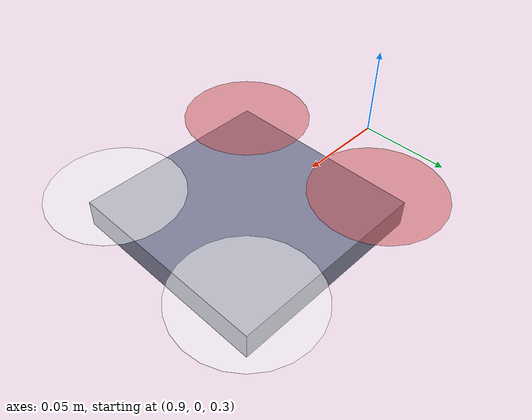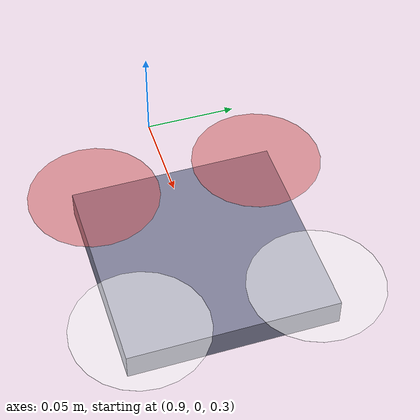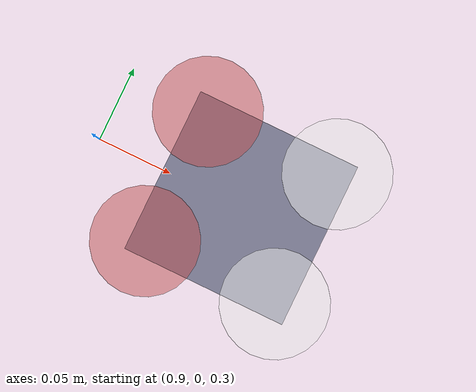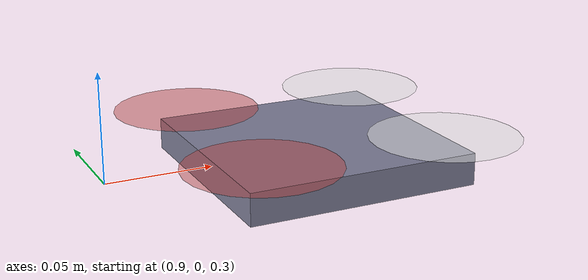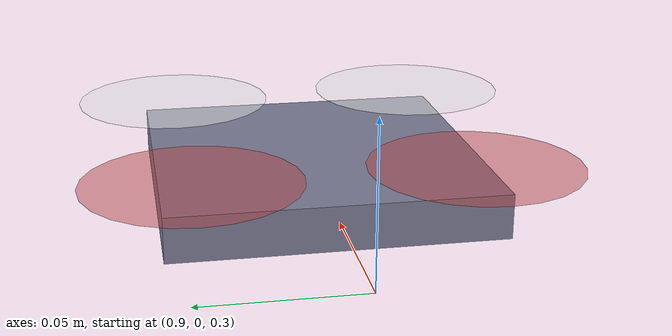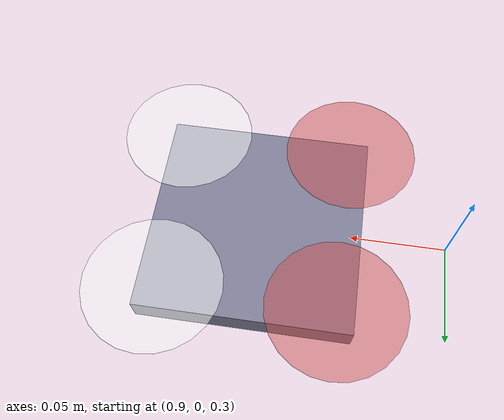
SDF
<sdf version="1.9">
 <world name="iflight_world">
  <physics type="ignored">
   <max_step_size>0.0005</max_step_size>
   <real_time_factor>1.0</real_time_factor>
  </physics>
  <plugin name="gz::sim::systems::Physics" filename="gz-sim-physics-system"/>
  <plugin name="gz::sim::systems::Sensors" filename="gz-sim-sensors-system">
   <render_engine>ogre2</render_engine>
  </plugin>
  <plugin name="gz::sim::systems::UserCommands" filename="gz-sim-user-commands-system"/>
  <plugin name="gz::sim::systems::SceneBroadcaster" filename="gz-sim-scene-broadcaster-system"/>
  <scene>
   <ambient>1 1 1 1</ambient>
   <origin_visual>false</origin_visual>
   <grid>false</grid>
   <shadows>0</shadows>
  </scene>
  <include><uri>iflight_force</uri><pose>1 0 0.3 0 0 0</pose></include>
  <plugin filename="gz-sim-apply-link-wrench-system" name="gz::sim::systems::ApplyLinkWrench"/>
 </world>
</sdf>

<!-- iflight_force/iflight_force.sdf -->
<sdf version="1.5">
	<model name="iflight_force">
        <link name="body">
			<inertial>
                <pose>0 0 0 0 0 0</pose>
				<mass>0.382</mass>
				<inertia>
					<ixx>0.00039235</ixx>
                    <ixy>0.0</ixy>
                    <ixz>0.0</ixz>
					<iyy>0.00039235</iyy>
					<iyz>0.0</iyz>
                    <izz>0.0007704</izz>
				</inertia>
			</inertial>
			<collision name="body_collision">
				<geometry>
					<box>
						<size>0.11 0.11 0.015</size>
					</box>
				</geometry>
			</collision>
			<visual name="body_visual">
				<geometry>
					<box>
						<size>0.11 0.11 0.015</size>
					</box>
				</geometry>
				<material>
					<ambient>0.5 0.5 0.6 1</ambient>
					<diffuse>0.5 0.5 0.6 1</diffuse>
					<specular>0 0 0 1</specular>
					<emissive>0 0 0 1</emissive>
				</material>
			</visual>
		</link>

		<link name='imu_link'>
			<inertial>
				<mass>0.02</mass>
				<inertia>
				<ixx>0.000001</ixx>
				<ixy>0</ixy>
				<ixz>0</ixz>
				<iyy>0.000001</iyy>
				<iyz>0</iyz>
				<izz>0.000001</izz>
				</inertia>
			</inertial>
			<sensor name="imu_sensor" type="imu">
				<pose degrees="true">0 0 0 0 0 90</pose>
				<always_on>1</always_on>
				<update_rate>1000.0</update_rate>
				<topic>imu</topic>
				<visualize>true</visualize>
			</sensor>
		</link>

		<link name="camera_link">
			<pose degrees="true">-1 0 0.4 0 15 0</pose>
			<inertial>
				<mass>0</mass>
				<inertia>
					<ixx>0.0</ixx>
					<ixy>0</ixy>
					<ixz>0</ixz>
					<iyy>0.0</iyy>
					<iyz>0</iyz>
					<izz>0.0</izz>
				</inertia>
			</inertial>
			<sensor name="camera" type="camera">
				<camera>
				<horizontal_fov>1.047</horizontal_fov>
				<image>
					<width>1280</width>
					<height>720</height>
				</image>
				<clip>
					<near>0.1</near>
					<far>500</far>
				</clip>
				</camera>
				<always_on>1</always_on>
				<update_rate>60</update_rate>
				<visualize>true</visualize>
				<topic>camera</topic>
			</sensor>
		</link>
		<link name="prop_0"> <!-- front right -->
			<pose>0.045 -0.045 0.0142 0 0 0</pose>
			<inertial>
                <pose>0 0 0 0 0 0</pose>
				<mass>0.002</mass>
				<inertia>
					<ixx>6.125E-7</ixx>
                    <ixy>0.0</ixy>
                    <ixz>0.0</ixz>
					<iyy>6.125E-7</iyy>
					<iyz>0.0</iyz>
                    <izz>0.000001225</izz>
				</inertia>
			</inertial>
			<collision name="prop_0_collision">
				<geometry>
					<cylinder>
						<radius>0.035</radius>
						<length>0.0001</length>
					</cylinder>
				</geometry>
			</collision>
			<visual name="prop_0_visual">
				<geometry><cylinder><radius>0.035</radius><length>0.0001</length></cylinder></geometry>
				<material><ambient>1 1 1 0.5</ambient><diffuse>1 1 1 0.5</diffuse></material>
			</visual>
		</link>

		<link name="prop_1"> <!-- front left -->
			<pose>0.045 0.045 0.0142 0 0 0</pose>
			<inertial>
                <pose>0 0 0 0 0 0</pose>
				<mass>0.002</mass>
				<inertia>
					<ixx>6.125E-7</ixx>
                    <ixy>0.0</ixy>
                    <ixz>0.0</ixz>
					<iyy>6.125E-7</iyy>
					<iyz>0.0</iyz>
                    <izz>0.000001225</izz>
				</inertia>
			</inertial>
			<collision name="prop_1_collision">
				<geometry>
					<cylinder>
						<radius>0.035</radius>
						<length>0.0001</length>
					</cylinder>
				</geometry>
			</collision>
			<visual name="prop_1_visual">
				<geometry><cylinder><radius>0.035</radius><length>0.0001</length></cylinder></geometry>
				<material><ambient>1 1 1 0.5</ambient><diffuse>1 1 1 0.5</diffuse></material>
			</visual>
		</link>

		<link name="prop_2"> <!-- rear left -->
			<pose>-0.045 0.045 0.0142 0 0 0</pose>
			<inertial>
                <pose>0 0 0 0 0 0</pose>
				<mass>0.002</mass>
				<inertia>
					<ixx>6.125E-7</ixx>
                    <ixy>0.0</ixy>
                    <ixz>0.0</ixz>
					<iyy>6.125E-7</iyy>
					<iyz>0.0</iyz>
                    <izz>0.000001225</izz>
				</inertia>
			</inertial>
			<collision name="prop_2_collision">
				<geometry>
					<cylinder>
						<radius>0.035</radius>
						<length>0.0001</length>
					</cylinder>
				</geometry>
			</collision>
			<visual name="prop_2_visual">
				<geometry><cylinder><radius>0.035</radius><length>0.0001</length></cylinder></geometry>
				<material><ambient>0.8 0.3 0.3 0.5</ambient><diffuse>0.8 0.3 0.3 0.5</diffuse></material>
			</visual>
		</link>

		<link name="prop_3"> <!-- rear right -->
			<pose>-0.045 -0.045 0.0142 0 0 0</pose>
			<inertial>
                <pose>0 0 0 0 0 0</pose>
				<mass>0.002</mass>
				<inertia>
					<ixx>6.125E-7</ixx>
                    <ixy>0.0</ixy>
                    <ixz>0.0</ixz>
					<iyy>6.125E-7</iyy>
					<iyz>0.0</iyz>
                    <izz>0.000001225</izz>
				</inertia>
			</inertial>
			<collision name="prop_3_collision">
				<geometry>
					<cylinder>
						<radius>0.035</radius>
						<length>0.0001</length>
					</cylinder>
				</geometry>
			</collision>
			<visual name="prop_3_visual">
				<geometry><cylinder><radius>0.035</radius><length>0.0001</length></cylinder></geometry>
				<material><ambient>0.8 0.3 0.3 0.5</ambient><diffuse>0.8 0.3 0.3 0.5</diffuse></material>
			</visual>
		</link>
		<joint name='imu_joint' type='fixed'>
			<child>imu_link</child>
			<parent>body</parent>
			<axis>
				<xyz>0 0 1</xyz>
				<limit>
				<lower>0</lower>
				<upper>0</upper>
				<effort>0</effort>
				<velocity>0</velocity>
				</limit>
				<dynamics>
				<damping>1.0</damping>
				</dynamics>
			</axis>
		</joint>

		<joint name="camera_joint" type="fixed">
				<child>camera_link</child>
				<parent>body</parent>
		</joint>

		<joint name="prop_0_joint" type="fixed">
			<child>prop_0</child>
			<parent>body</parent>
		</joint>

		<joint name="prop_1_joint" type="fixed">
			<child>prop_1</child>
			<parent>body</parent>
		</joint>

		<joint name="prop_2_joint" type="fixed">
			<child>prop_2</child>
			<parent>body</parent>
		</joint>

		<joint name="prop_3_joint" type="fixed">
			<child>prop_3</child>
			<parent>body</parent>
		</joint>

		<plugin filename="gz-sim-imu-system"
	        name="gz::sim::systems::Imu">
		</plugin>
		<plugin filename="Iflight" name="Iflight">
		</plugin>

	</model>
</sdf>
